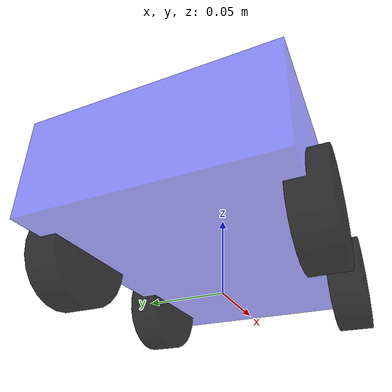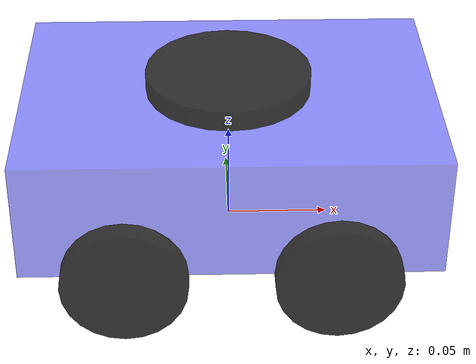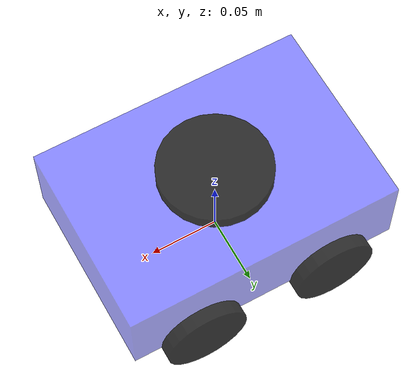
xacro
<?xml version="1.0"?>
<robot xmlns:xacro="http://www.ros.org/wiki/xacro" name="robot">
    <!-- 底盘 -->
    <xacro:include filename="$(find robot_description)/urdf/base.xacro" />

    <!-- 执行器组件 -->
    <xacro:include filename="$(find robot_description)/urdf/actuator/wheel.xacro" />
    <xacro:include filename="$(find robot_description)/urdf/actuator/rotating_base.xacro" />
    <xacro:include filename="$(find robot_description)/urdf/actuator/upper_arm.xacro" />
    <xacro:include filename="$(find robot_description)/urdf/actuator/forearm.xacro" />

    <xacro:base_xacro />

    <!-- 执行器驱动轮-->
    <xacro:wheel_xacro wheel_name="left1" xyz="0.05 0.07 -0.03" />
    <xacro:wheel_xacro wheel_name="left2" xyz="-0.05 0.07 -0.03" />
    <xacro:wheel_xacro wheel_name="right1" xyz="0.05 -0.07 -0.03" />
    <xacro:wheel_xacro wheel_name="right2" xyz="-0.05 -0.07 -0.03" />
    <!-- 旋转底盘 -->
    <xacro:rotating_base_xacro rotating_base_name="rotating_base" xyz="0 0 0.03" />
    <!-- 机械臂 -->

    <xacro:include filename="$(find robot_description)/urdf/robot_ros2_control.xacro" />
    <xacro:robot_ros2_control />

</robot>

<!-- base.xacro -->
<robot xmlns:xacro="http://www.ros.org/wiki/xacro">
   <xacro:include filename="$(find robot_description)/urdf/common_inertia.xacro" />
    <xacro:macro name="base_xacro">

     <link name="base_footprint" />

        <joint name="base_joint" type="fixed">
            <parent link="base_footprint" />
            <child link="base_link" />
            <origin xyz="0.0 0.0 ${0.03+0.015-0.001}" rpy="0 0 0" />
        </joint>

        <link name="base_link">
            <visual>
                <origin xyz="0 0 0.0" rpy="0 0 0" />
                <geometry>
                    <box size="0.20 0.14 0.06" />
                </geometry>
                <material name="blue">
                    <color rgba="0.1 0.1 1.0 0.5"/>
                </material>
            </visual>
            <collision>
                <origin xyz="0 0 0.0" rpy="0 0 0" />
                <geometry>
                    <box size="0.20 0.14 0.06" />
                </geometry>
                <material name="blue">
                    <color rgba="0.1 0.1 1.0 0.5"/>
                </material>
            </collision>
            <xacro:box_inertia m="0.05" w="0.20" d="0.14" h="0.06"/>
        </link>

    </xacro:macro>

</robot>

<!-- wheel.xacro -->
<robot xmlns:xacro="http://www.ros.org/wiki/xacro">
   <xacro:include filename="$(find robot_description)/urdf/common_inertia.xacro" />
    <xacro:macro name="wheel_xacro" params="wheel_name xyz">
        <link name="${wheel_name}_wheel_link">
            <visual>
                <origin xyz="0 0 0" rpy="1.57079 0 0" />
                <geometry>
                    <cylinder length="0.02" radius="0.03" />
                </geometry>
                <material name="black">
                    <color rgba="0.0 0.0 0.0 0.8"/>
                </material>
            </visual>
            <collision>
                <origin xyz="0 0 0" rpy="1.57079 0 0" />
                <geometry>
                    <cylinder length="0.02" radius="0.03" />
                </geometry>
                <material name="black">
                    <color rgba="0.0 0.0 0.0 0.8"/>
                </material>
            </collision>
            <xacro:cylinder_inertia m="0.1" h="0.02" r="0.03"/>
        </link>
        <gazebo reference="${wheel_name}_wheel_link">
            <mu1 value="20.0" />
            <mu2 value="20.0" />
            <kp value="1000000000.0" />
            <kd value="1.0" />
        </gazebo>

        <joint name="${wheel_name}_wheel_joint" type="continuous">
            <parent link="base_link" />
            <child link="${wheel_name}_wheel_link" />
            <origin xyz="${xyz}" />
            <axis xyz="0 1 0" />
        </joint>
    </xacro:macro>
</robot>

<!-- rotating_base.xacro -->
<robot xmlns:xacro="http://www.ros.org/wiki/xacro">
   <xacro:include filename="$(find robot_description)/urdf/common_inertia.xacro" />
    <xacro:macro name="rotating_base_xacro" params="rotating_base_name xyz">
        <link name="${rotating_base_name}_link">
            <visual>
                <origin xyz="0 0 0" rpy="0 0 0" />
                <geometry>
                    <cylinder length="0.02" radius="0.04" />
                </geometry>
                <material name="black">
                    <color rgba="0.0 0.0 0.0 0.8"/>
                </material>
            </visual>
            <collision>
                <origin xyz="0 0 0" rpy="0 0 0" />
                <geometry>
                    <cylinder length="0.02" radius="0.04" />
                </geometry>
                <material name="black">
                    <color rgba="0.0 0.0 0.0 0.8"/>
                </material>
            </collision>
            <xacro:cylinder_inertia m="0.1" h="0.02" r="0.04"/>
        </link>
        <gazebo reference="${rotating_base_name}_link">
            <material>Gazebo/Black</material>
        </gazebo>

        <joint name="${rotating_base_name}_joint" type="continuous">
            <parent link="base_link" />
            <child link="${rotating_base_name}_link" />
            <origin xyz="${xyz}" />
            <axis xyz="0 0 1" />
        </joint>
    </xacro:macro>
</robot>
